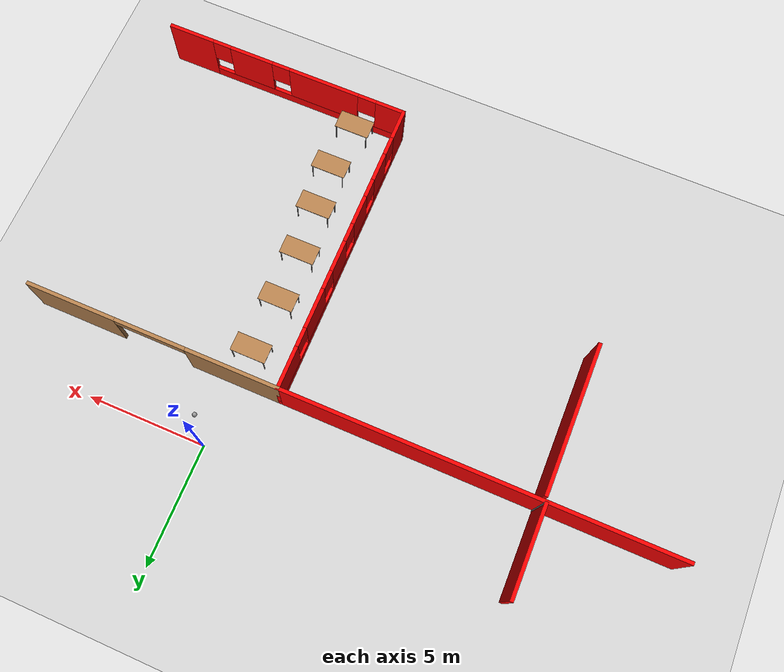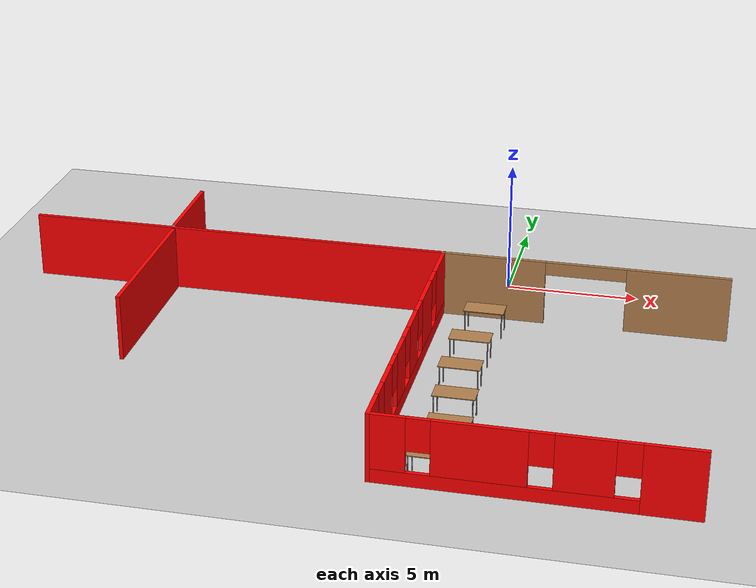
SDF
<sdf version="1.6">
 <world name="default">
  <model name="ground_plane">
   <static>1</static>
   <link name="link">
    <collision name="collision">
     <geometry><plane><normal>0 0 1</normal><size>100 100</size></plane></geometry>
     <surface><friction><ode><mu>100</mu><mu2>50</mu2></ode></friction></surface>
    </collision>
    <visual name="visual">
     <cast_shadows>0</cast_shadows>
     <geometry><plane><normal>0 0 1</normal><size>100 100</size></plane></geometry>
     <material>
      <script><uri>file://media/materials/scripts/gazebo.material</uri><name>Gazebo/Grey</name></script>
     </material>
    </visual>
   </link>
  </model>
  <model name="FloorPlan">
   <pose>0.30947 -3.19534 0 0 -0 0</pose>
   <link name="Wall_106">
    <pose>2.89263 0.399775 0 0 -0 0</pose>
    <visual name="Wall_106_Visual_0">
     <pose>-3.40324 0 1.25 0 -0 0</pose>
     <geometry><box><size>3.94351 0.15 2.5</size></box></geometry>
     <material>
      <script><uri>file://media/materials/scripts/gazebo.material</uri><name>Gazebo/Wood</name></script>
      <ambient>1 1 1 1</ambient>
     </material>
     <meta><layer>0</layer></meta>
    </visual>
    <collision name="Wall_106_Collision_0">
     <geometry><box><size>3.94351 0.15 2.5</size></box></geometry>
     <pose>-3.40324 0 1.25 0 -0 0</pose>
    </collision>
    <visual name="Wall_106_Visual_1">
     <pose>3.47176 0 1.25 0 -0 0</pose>
     <geometry><box><size>3.80649 0.15 2.5</size></box></geometry>
     <material>
      <script><uri>file://media/materials/scripts/gazebo.material</uri><name>Gazebo/Wood</name></script>
      <ambient>1 1 1 1</ambient>
     </material>
     <meta><layer>0</layer></meta>
    </visual>
    <collision name="Wall_106_Collision_1">
     <geometry><box><size>3.80649 0.15 2.5</size></box></geometry>
     <pose>3.47176 0 1.25 0 -0 0</pose>
    </collision>
    <visual name="Wall_106_Visual_2">
     <pose>0.068513 0 2.25 0 -0 0</pose>
     <geometry><box><size>3 0.15 0.5</size></box></geometry>
     <material>
      <script><uri>file://media/materials/scripts/gazebo.material</uri><name>Gazebo/Wood</name></script>
      <ambient>1 1 1 1</ambient>
     </material>
     <meta><layer>0</layer></meta>
    </visual>
    <collision name="Wall_106_Collision_2">
     <geometry><box><size>3 0.15 0.5</size></box></geometry>
     <pose>0.068513 0 2.25 0 -0 0</pose>
    </collision>
   </link>
   <link name="Wall_54">
    <collision name="Wall_54_Collision">
     <geometry><box><size>6.25 0.15 2.5</size></box></geometry>
     <pose>0 0 1.25 0 -0 0</pose>
    </collision>
    <visual name="Wall_54_Visual">
     <pose>0 0 1.25 0 -0 0</pose>
     <geometry><box><size>6.25 0.15 2.5</size></box></geometry>
     <material>
      <script><uri>file://media/materials/scripts/gazebo.material</uri><name>Gazebo/Grey</name></script>
      <ambient>1 0 0 1</ambient>
     </material>
     <meta><layer>0</layer></meta>
    </visual>
    <pose>-12.9859 -2.88407 0 0 -0 1.5708</pose>
   </link>
   <link name="Wall_6">
    <pose>2.89263 -12.2002 0 0 -0 3.14159</pose>
    <visual name="Wall_6_Visual_0">
     <pose>-4.36632 0 1.25 0 -0 0</pose>
     <geometry><box><size>2.01735 0.15 2.5</size></box></geometry>
     <material>
      <script><uri>file://media/materials/scripts/gazebo.material</uri><name>Gazebo/Grey</name></script>
      <ambient>1 0 0 1</ambient>
     </material>
     <meta><layer>0</layer></meta>
    </visual>
    <collision name="Wall_6_Collision_0">
     <geometry><box><size>2.01735 0.15 2.5</size></box></geometry>
     <pose>-4.36632 0 1.25 0 -0 0</pose>
    </collision>
    <visual name="Wall_6_Visual_1">
     <pose>1.00868 0 0.25 0 -0 0</pose>
     <geometry><box><size>8.73265 0.15 0.5</size></box></geometry>
     <material>
      <script><uri>file://media/materials/scripts/gazebo.material</uri><name>Gazebo/Grey</name></script>
      <ambient>1 0 0 1</ambient>
     </material>
     <meta><layer>0</layer></meta>
    </visual>
    <collision name="Wall_6_Collision_1">
     <geometry><box><size>8.73265 0.15 0.5</size></box></geometry>
     <pose>1.00868 0 0.25 0 -0 0</pose>
    </collision>
    <visual name="Wall_6_Visual_2">
     <pose>-1.59333 0 1.5 0 -0 0</pose>
     <geometry><box><size>1.92863 0.15 2</size></box></geometry>
     <material>
      <script><uri>file://media/materials/scripts/gazebo.material</uri><name>Gazebo/Grey</name></script>
      <ambient>1 0 0 1</ambient>
     </material>
     <meta><layer>0</layer></meta>
    </visual>
    <collision name="Wall_6_Collision_2">
     <geometry><box><size>1.92863 0.15 2</size></box></geometry>
     <pose>-1.59333 0 1.5 0 -0 0</pose>
    </collision>
    <visual name="Wall_6_Visual_3">
     <pose>1.72382 0 1.5 0 -0 0</pose>
     <geometry><box><size>3.10568 0.15 2</size></box></geometry>
     <material>
      <script><uri>file://media/materials/scripts/gazebo.material</uri><name>Gazebo/Grey</name></script>
      <ambient>1 0 0 1</ambient>
     </material>
     <meta><layer>0</layer></meta>
    </visual>
    <collision name="Wall_6_Collision_3">
     <geometry><box><size>3.10568 0.15 2</size></box></geometry>
     <pose>1.72382 0 1.5 0 -0 0</pose>
    </collision>
    <visual name="Wall_6_Visual_4">
     <pose>4.72583 0 1.5 0 -0 0</pose>
     <geometry><box><size>1.29834 0.15 2</size></box></geometry>
     <material>
      <script><uri>file://media/materials/scripts/gazebo.material</uri><name>Gazebo/Grey</name></script>
      <ambient>1 0 0 1</ambient>
     </material>
     <meta><layer>0</layer></meta>
    </visual>
    <collision name="Wall_6_Collision_4">
     <geometry><box><size>1.29834 0.15 2</size></box></geometry>
     <pose>4.72583 0 1.5 0 -0 0</pose>
    </collision>
    <visual name="Wall_6_Visual_5">
     <pose>-2.95765 0 1.9 0 -0 0</pose>
     <geometry><box><size>0.8 0.15 1.2</size></box></geometry>
     <material>
      <script><uri>file://media/materials/scripts/gazebo.material</uri><name>Gazebo/Grey</name></script>
      <ambient>1 0 0 1</ambient>
     </material>
     <meta><layer>0</layer></meta>
    </visual>
    <collision name="Wall_6_Collision_5">
     <geometry><box><size>0.8 0.15 1.2</size></box></geometry>
     <pose>-2.95765 0 1.9 0 -0 0</pose>
    </collision>
    <visual name="Wall_6_Visual_6">
     <pose>-0.22902 0 1.9 0 -0 0</pose>
     <geometry><box><size>0.8 0.15 1.2</size></box></geometry>
     <material>
      <script><uri>file://media/materials/scripts/gazebo.material</uri><name>Gazebo/Grey</name></script>
      <ambient>1 0 0 1</ambient>
     </material>
     <meta><layer>0</layer></meta>
    </visual>
    <collision name="Wall_6_Collision_6">
     <geometry><box><size>0.8 0.15 1.2</size></box></geometry>
     <pose>-0.22902 0 1.9 0 -0 0</pose>
    </collision>
    <visual name="Wall_6_Visual_7">
     <pose>3.67666 0 1.9 0 -0 0</pose>
     <geometry><box><size>0.8 0.15 1.2</size></box></geometry>
     <material>
      <script><uri>file://media/materials/scripts/gazebo.material</uri><name>Gazebo/Grey</name></script>
      <ambient>1 0 0 1</ambient>
     </material>
     <meta><layer>0</layer></meta>
    </visual>
    <collision name="Wall_6_Collision_7">
     <geometry><box><size>0.8 0.15 1.2</size></box></geometry>
     <pose>3.67666 0 1.9 0 -0 0</pose>
    </collision>
   </link>
   <link name="Wall_7">
    <pose>-2.40737 -5.90023 0 0 -0 1.5708</pose>
    <visual name="Wall_7_Visual_0">
     <pose>-5.70503 0 1.25 0 -0 0</pose>
     <geometry><box><size>1.33994 0.15 2.5</size></box></geometry>
     <material>
      <script><uri>file://media/materials/scripts/gazebo.material</uri><name>Gazebo/Grey</name></script>
      <ambient>1 0 0 1</ambient>
     </material>
     <meta><layer>0</layer></meta>
    </visual>
    <collision name="Wall_7_Collision_0">
     <geometry><box><size>1.33994 0.15 2.5</size></box></geometry>
     <pose>-5.70503 0 1.25 0 -0 0</pose>
    </collision>
    <visual name="Wall_7_Visual_1">
     <pose>0.66997 0 0.25 0 -0 0</pose>
     <geometry><box><size>11.4101 0.15 0.5</size></box></geometry>
     <material>
      <script><uri>file://media/materials/scripts/gazebo.material</uri><name>Gazebo/Grey</name></script>
      <ambient>1 0 0 1</ambient>
     </material>
     <meta><layer>0</layer></meta>
    </visual>
    <collision name="Wall_7_Collision_1">
     <geometry><box><size>11.4101 0.15 0.5</size></box></geometry>
     <pose>0.66997 0 0.25 0 -0 0</pose>
    </collision>
    <visual name="Wall_7_Visual_2">
     <pose>-3.61851 0 1.5 0 -0 0</pose>
     <geometry><box><size>1.2331 0.15 2</size></box></geometry>
     <material>
      <script><uri>file://media/materials/scripts/gazebo.material</uri><name>Gazebo/Grey</name></script>
      <ambient>1 0 0 1</ambient>
     </material>
     <meta><layer>0</layer></meta>
    </visual>
    <collision name="Wall_7_Collision_2">
     <geometry><box><size>1.2331 0.15 2</size></box></geometry>
     <pose>-3.61851 0 1.5 0 -0 0</pose>
    </collision>
    <visual name="Wall_7_Visual_3">
     <pose>-1.55867 0 1.5 0 -0 0</pose>
     <geometry><box><size>1.2866 0.15 2</size></box></geometry>
     <material>
      <script><uri>file://media/materials/scripts/gazebo.material</uri><name>Gazebo/Grey</name></script>
      <ambient>1 0 0 1</ambient>
     </material>
     <meta><layer>0</layer></meta>
    </visual>
    <collision name="Wall_7_Collision_3">
     <geometry><box><size>1.2866 0.15 2</size></box></geometry>
     <pose>-1.55867 0 1.5 0 -0 0</pose>
    </collision>
    <visual name="Wall_7_Visual_4">
     <pose>0.554682 0 1.5 0 -0 0</pose>
     <geometry><box><size>1.3401 0.15 2</size></box></geometry>
     <material>
      <script><uri>file://media/materials/scripts/gazebo.material</uri><name>Gazebo/Grey</name></script>
      <ambient>1 0 0 1</ambient>
     </material>
     <meta><layer>0</layer></meta>
    </visual>
    <collision name="Wall_7_Collision_4">
     <geometry><box><size>1.3401 0.15 2</size></box></geometry>
     <pose>0.554682 0 1.5 0 -0 0</pose>
    </collision>
    <visual name="Wall_7_Visual_5">
     <pose>2.88204 0 1.5 0 -0 0</pose>
     <geometry><box><size>1.71462 0.15 2</size></box></geometry>
     <material>
      <script><uri>file://media/materials/scripts/gazebo.material</uri><name>Gazebo/Grey</name></script>
      <ambient>1 0 0 1</ambient>
     </material>
     <meta><layer>0</layer></meta>
    </visual>
    <collision name="Wall_7_Collision_5">
     <geometry><box><size>1.71462 0.15 2</size></box></geometry>
     <pose>2.88204 0 1.5 0 -0 0</pose>
    </collision>
    <visual name="Wall_7_Visual_6">
     <pose>5.45718 0 1.5 0 -0 0</pose>
     <geometry><box><size>1.83565 0.15 2</size></box></geometry>
     <material>
      <script><uri>file://media/materials/scripts/gazebo.material</uri><name>Gazebo/Grey</name></script>
      <ambient>1 0 0 1</ambient>
     </material>
     <meta><layer>0</layer></meta>
    </visual>
    <collision name="Wall_7_Collision_6">
     <geometry><box><size>1.83565 0.15 2</size></box></geometry>
     <pose>5.45718 0 1.5 0 -0 0</pose>
    </collision>
    <visual name="Wall_7_Visual_7">
     <pose>-4.63506 0 1.9 0 -0 0</pose>
     <geometry><box><size>0.8 0.15 1.2</size></box></geometry>
     <material>
      <script><uri>file://media/materials/scripts/gazebo.material</uri><name>Gazebo/Grey</name></script>
      <ambient>1 0 0 1</ambient>
     </material>
     <meta><layer>0</layer></meta>
    </visual>
    <collision name="Wall_7_Collision_7">
     <geometry><box><size>0.8 0.15 1.2</size></box></geometry>
     <pose>-4.63506 0 1.9 0 -0 0</pose>
    </collision>
    <visual name="Wall_7_Visual_8">
     <pose>-2.60196 0 1.9 0 -0 0</pose>
     <geometry><box><size>0.8 0.15 1.2</size></box></geometry>
     <material>
      <script><uri>file://media/materials/scripts/gazebo.material</uri><name>Gazebo/Grey</name></script>
      <ambient>1 0 0 1</ambient>
     </material>
     <meta><layer>0</layer></meta>
    </visual>
    <collision name="Wall_7_Collision_8">
     <geometry><box><size>0.8 0.15 1.2</size></box></geometry>
     <pose>-2.60196 0 1.9 0 -0 0</pose>
    </collision>
    <visual name="Wall_7_Visual_9">
     <pose>-0.515368 0 1.9 0 -0 0</pose>
     <geometry><box><size>0.8 0.15 1.2</size></box></geometry>
     <material>
      <script><uri>file://media/materials/scripts/gazebo.material</uri><name>Gazebo/Grey</name></script>
      <ambient>1 0 0 1</ambient>
     </material>
     <meta><layer>0</layer></meta>
    </visual>
    <collision name="Wall_7_Collision_9">
     <geometry><box><size>0.8 0.15 1.2</size></box></geometry>
     <pose>-0.515368 0 1.9 0 -0 0</pose>
    </collision>
    <visual name="Wall_7_Visual_10">
     <pose>1.62473 0 1.9 0 -0 0</pose>
     <geometry><box><size>0.8 0.15 1.2</size></box></geometry>
     <material>
      <script><uri>file://media/materials/scripts/gazebo.material</uri><name>Gazebo/Grey</name></script>
      <ambient>1 0 0 1</ambient>
     </material>
     <meta><layer>0</layer></meta>
    </visual>
    <collision name="Wall_7_Collision_10">
     <geometry><box><size>0.8 0.15 1.2</size></box></geometry>
     <pose>1.62473 0 1.9 0 -0 0</pose>
    </collision>
    <visual name="Wall_7_Visual_11">
     <pose>4.13935 0 1.9 0 -0 0</pose>
     <geometry><box><size>0.8 0.15 1.2</size></box></geometry>
     <material>
      <script><uri>file://media/materials/scripts/gazebo.material</uri><name>Gazebo/Grey</name></script>
      <ambient>1 0 0 1</ambient>
     </material>
     <meta><layer>0</layer></meta>
    </visual>
    <collision name="Wall_7_Collision_11">
     <geometry><box><size>0.8 0.15 1.2</size></box></geometry>
     <pose>4.13935 0 1.9 0 -0 0</pose>
    </collision>
   </link>
   <link name="Wall_8">
    <collision name="Wall_8_Collision">
     <geometry><box><size>16.25 0.15 2.5</size></box></geometry>
     <pose>0 0 1.25 0 -0 0</pose>
    </collision>
    <visual name="Wall_8_Visual">
     <pose>0 0 1.25 0 -0 0</pose>
     <geometry><box><size>16.25 0.15 2.5</size></box></geometry>
     <material>
      <script><uri>file://media/materials/scripts/gazebo.material</uri><name>Gazebo/Grey</name></script>
      <ambient>1 0 0 1</ambient>
     </material>
     <meta><layer>0</layer></meta>
    </visual>
    <pose>-10.4574 0.399775 0 0 -0 3.14159</pose>
   </link>
   <link name="Wall_87">
    <collision name="Wall_87_Collision">
     <geometry><box><size>3.75 0.15 2.5</size></box></geometry>
     <pose>0 0 1.25 0 -0 0</pose>
    </collision>
    <visual name="Wall_87_Visual">
     <pose>0 0 1.25 0 -0 0</pose>
     <geometry><box><size>3.75 0.15 2.5</size></box></geometry>
     <material>
      <script><uri>file://media/materials/scripts/gazebo.material</uri><name>Gazebo/Grey</name></script>
      <ambient>1 0 0 1</ambient>
     </material>
     <meta><layer>0</layer></meta>
    </visual>
    <pose>-13.0724 2.2709 0 0 -0 -1.5708</pose>
   </link>
   <link name="Wall_88">
    <collision name="Wall_88_Collision">
     <geometry><box><size>0.16 0.15 2.5</size></box></geometry>
     <pose>0 0 1.25 0 -0 0</pose>
    </collision>
    <visual name="Wall_88_Visual">
     <pose>0 0 1.25 0 -0 0</pose>
     <geometry><box><size>0.16 0.15 2.5</size></box></geometry>
     <material>
      <script><uri>file://media/materials/scripts/gazebo.material</uri><name>Gazebo/Grey</name></script>
      <ambient>1 1 1 1</ambient>
     </material>
     <meta><layer>0</layer></meta>
    </visual>
    <pose>-13.0674 0.470897 0 0 -0 0</pose>
   </link>
   <static>1</static>
  </model>
  <model name="table">
   <static>1</static>
   <link name="link">
    <collision name="surface">
     <pose>0 0 1 0 -0 0</pose>
     <geometry><box><size>1.5 0.8 0.03</size></box></geometry>
     <surface><friction><ode><mu>0.6</mu><mu2>0.6</mu2></ode></friction></surface>
    </collision>
    <visual name="visual1">
     <pose>0 0 1 0 -0 0</pose>
     <geometry><box><size>1.5 0.8 0.03</size></box></geometry>
     <material>
      <script><uri>file://media/materials/scripts/gazebo.material</uri><name>Gazebo/Wood</name></script>
     </material>
    </visual>
    <collision name="front_left_leg">
     <pose>0.68 0.38 0.5 0 -0 0</pose>
     <geometry><cylinder><radius>0.02</radius><length>1</length></cylinder></geometry>
    </collision>
    <visual name="front_left_leg">
     <pose>0.68 0.38 0.5 0 -0 0</pose>
     <geometry><cylinder><radius>0.02</radius><length>1</length></cylinder></geometry>
     <material>
      <script><uri>file://media/materials/scripts/gazebo.material</uri><name>Gazebo/Grey</name></script>
     </material>
    </visual>
    <collision name="front_right_leg">
     <pose>0.68 -0.38 0.5 0 -0 0</pose>
     <geometry><cylinder><radius>0.02</radius><length>1</length></cylinder></geometry>
    </collision>
    <visual name="front_right_leg">
     <pose>0.68 -0.38 0.5 0 -0 0</pose>
     <geometry><cylinder><radius>0.02</radius><length>1</length></cylinder></geometry>
     <material>
      <script><uri>file://media/materials/scripts/gazebo.material</uri><name>Gazebo/Grey</name></script>
     </material>
    </visual>
    <collision name="back_right_leg">
     <pose>-0.68 -0.38 0.5 0 -0 0</pose>
     <geometry><cylinder><radius>0.02</radius><length>1</length></cylinder></geometry>
    </collision>
    <visual name="back_right_leg">
     <pose>-0.68 -0.38 0.5 0 -0 0</pose>
     <geometry><cylinder><radius>0.02</radius><length>1</length></cylinder></geometry>
     <material>
      <script><uri>file://media/materials/scripts/gazebo.material</uri><name>Gazebo/Grey</name></script>
     </material>
    </visual>
    <collision name="back_left_leg">
     <pose>-0.68 0.38 0.5 0 -0 0</pose>
     <geometry><cylinder><radius>0.02</radius><length>1</length></cylinder></geometry>
    </collision>
    <visual name="back_left_leg">
     <pose>-0.68 0.38 0.5 0 -0 0</pose>
     <geometry><cylinder><radius>0.02</radius><length>1</length></cylinder></geometry>
     <material>
      <script><uri>file://media/materials/scripts/gazebo.material</uri><name>Gazebo/Grey</name></script>
     </material>
    </visual>
   </link>
   <pose>0.027881 -12.7345 0 0 -0 0</pose>
  </model>
  <model name="table_0">
   <static>1</static>
   <link name="link">
    <collision name="surface">
     <pose>0 0 1 0 -0 0</pose>
     <geometry><box><size>1.5 0.8 0.03</size></box></geometry>
     <surface><friction><ode><mu>0.6</mu><mu2>0.6</mu2></ode></friction></surface>
    </collision>
    <visual name="visual1">
     <pose>0 0 1 0 -0 0</pose>
     <geometry><box><size>1.5 0.8 0.03</size></box></geometry>
     <material>
      <script><uri>file://media/materials/scripts/gazebo.material</uri><name>Gazebo/Wood</name></script>
     </material>
    </visual>
    <collision name="front_left_leg">
     <pose>0.68 0.38 0.5 0 -0 0</pose>
     <geometry><cylinder><radius>0.02</radius><length>1</length></cylinder></geometry>
    </collision>
    <visual name="front_left_leg">
     <pose>0.68 0.38 0.5 0 -0 0</pose>
     <geometry><cylinder><radius>0.02</radius><length>1</length></cylinder></geometry>
     <material>
      <script><uri>file://media/materials/scripts/gazebo.material</uri><name>Gazebo/Grey</name></script>
     </material>
    </visual>
    <collision name="front_right_leg">
     <pose>0.68 -0.38 0.5 0 -0 0</pose>
     <geometry><cylinder><radius>0.02</radius><length>1</length></cylinder></geometry>
    </collision>
    <visual name="front_right_leg">
     <pose>0.68 -0.38 0.5 0 -0 0</pose>
     <geometry><cylinder><radius>0.02</radius><length>1</length></cylinder></geometry>
     <material>
      <script><uri>file://media/materials/scripts/gazebo.material</uri><name>Gazebo/Grey</name></script>
     </material>
    </visual>
    <collision name="back_right_leg">
     <pose>-0.68 -0.38 0.5 0 -0 0</pose>
     <geometry><cylinder><radius>0.02</radius><length>1</length></cylinder></geometry>
    </collision>
    <visual name="back_right_leg">
     <pose>-0.68 -0.38 0.5 0 -0 0</pose>
     <geometry><cylinder><radius>0.02</radius><length>1</length></cylinder></geometry>
     <material>
      <script><uri>file://media/materials/scripts/gazebo.material</uri><name>Gazebo/Grey</name></script>
     </material>
    </visual>
    <collision name="back_left_leg">
     <pose>-0.68 0.38 0.5 0 -0 0</pose>
     <geometry><cylinder><radius>0.02</radius><length>1</length></cylinder></geometry>
    </collision>
    <visual name="back_left_leg">
     <pose>-0.68 0.38 0.5 0 -0 0</pose>
     <geometry><cylinder><radius>0.02</radius><length>1</length></cylinder></geometry>
     <material>
      <script><uri>file://media/materials/scripts/gazebo.material</uri><name>Gazebo/Grey</name></script>
     </material>
    </visual>
   </link>
   <pose>-0.128707 -10.7909 0 0 -0 0</pose>
  </model>
  <model name="table_1">
   <static>1</static>
   <link name="link">
    <collision name="surface">
     <pose>0 0 1 0 -0 0</pose>
     <geometry><box><size>1.5 0.8 0.03</size></box></geometry>
     <surface><friction><ode><mu>0.6</mu><mu2>0.6</mu2></ode></friction></surface>
    </collision>
    <visual name="visual1">
     <pose>0 0 1 0 -0 0</pose>
     <geometry><box><size>1.5 0.8 0.03</size></box></geometry>
     <material>
      <script><uri>file://media/materials/scripts/gazebo.material</uri><name>Gazebo/Wood</name></script>
     </material>
    </visual>
    <collision name="front_left_leg">
     <pose>0.68 0.38 0.5 0 -0 0</pose>
     <geometry><cylinder><radius>0.02</radius><length>1</length></cylinder></geometry>
    </collision>
    <visual name="front_left_leg">
     <pose>0.68 0.38 0.5 0 -0 0</pose>
     <geometry><cylinder><radius>0.02</radius><length>1</length></cylinder></geometry>
     <material>
      <script><uri>file://media/materials/scripts/gazebo.material</uri><name>Gazebo/Grey</name></script>
     </material>
    </visual>
    <collision name="front_right_leg">
     <pose>0.68 -0.38 0.5 0 -0 0</pose>
     <geometry><cylinder><radius>0.02</radius><length>1</length></cylinder></geometry>
    </collision>
    <visual name="front_right_leg">
     <pose>0.68 -0.38 0.5 0 -0 0</pose>
     <geometry><cylinder><radius>0.02</radius><length>1</length></cylinder></geometry>
     <material>
      <script><uri>file://media/materials/scripts/gazebo.material</uri><name>Gazebo/Grey</name></script>
     </material>
    </visual>
    <collision name="back_right_leg">
     <pose>-0.68 -0.38 0.5 0 -0 0</pose>
     <geometry><cylinder><radius>0.02</radius><length>1</length></cylinder></geometry>
    </collision>
    <visual name="back_right_leg">
     <pose>-0.68 -0.38 0.5 0 -0 0</pose>
     <geometry><cylinder><radius>0.02</radius><length>1</length></cylinder></geometry>
     <material>
      <script><uri>file://media/materials/scripts/gazebo.material</uri><name>Gazebo/Grey</name></script>
     </material>
    </visual>
    <collision name="back_left_leg">
     <pose>-0.68 0.38 0.5 0 -0 0</pose>
     <geometry><cylinder><radius>0.02</radius><length>1</length></cylinder></geometry>
    </collision>
    <visual name="back_left_leg">
     <pose>-0.68 0.38 0.5 0 -0 0</pose>
     <geometry><cylinder><radius>0.02</radius><length>1</length></cylinder></geometry>
     <material>
      <script><uri>file://media/materials/scripts/gazebo.material</uri><name>Gazebo/Grey</name></script>
     </material>
    </visual>
   </link>
   <pose>-0.331607 -8.68007 0 0 -0 0</pose>
  </model>
  <model name="table_2">
   <static>1</static>
   <link name="link">
    <collision name="surface">
     <pose>0 0 1 0 -0 0</pose>
     <geometry><box><size>1.5 0.8 0.03</size></box></geometry>
     <surface><friction><ode><mu>0.6</mu><mu2>0.6</mu2></ode></friction></surface>
    </collision>
    <visual name="visual1">
     <pose>0 0 1 0 -0 0</pose>
     <geometry><box><size>1.5 0.8 0.03</size></box></geometry>
     <material>
      <script><uri>file://media/materials/scripts/gazebo.material</uri><name>Gazebo/Wood</name></script>
     </material>
    </visual>
    <collision name="front_left_leg">
     <pose>0.68 0.38 0.5 0 -0 0</pose>
     <geometry><cylinder><radius>0.02</radius><length>1</length></cylinder></geometry>
    </collision>
    <visual name="front_left_leg">
     <pose>0.68 0.38 0.5 0 -0 0</pose>
     <geometry><cylinder><radius>0.02</radius><length>1</length></cylinder></geometry>
     <material>
      <script><uri>file://media/materials/scripts/gazebo.material</uri><name>Gazebo/Grey</name></script>
     </material>
    </visual>
    <collision name="front_right_leg">
     <pose>0.68 -0.38 0.5 0 -0 0</pose>
     <geometry><cylinder><radius>0.02</radius><length>1</length></cylinder></geometry>
    </collision>
    <visual name="front_right_leg">
     <pose>0.68 -0.38 0.5 0 -0 0</pose>
     <geometry><cylinder><radius>0.02</radius><length>1</length></cylinder></geometry>
     <material>
      <script><uri>file://media/materials/scripts/gazebo.material</uri><name>Gazebo/Grey</name></script>
     </material>
    </visual>
    <collision name="back_right_leg">
     <pose>-0.68 -0.38 0.5 0 -0 0</pose>
     <geometry><cylinder><radius>0.02</radius><length>1</length></cylinder></geometry>
    </collision>
    <visual name="back_right_leg">
     <pose>-0.68 -0.38 0.5 0 -0 0</pose>
     <geometry><cylinder><radius>0.02</radius><length>1</length></cylinder></geometry>
     <material>
      <script><uri>file://media/materials/scripts/gazebo.material</uri><name>Gazebo/Grey</name></script>
     </material>
    </visual>
    <collision name="back_left_leg">
     <pose>-0.68 0.38 0.5 0 -0 0</pose>
     <geometry><cylinder><radius>0.02</radius><length>1</length></cylinder></geometry>
    </collision>
    <visual name="back_left_leg">
     <pose>-0.68 0.38 0.5 0 -0 0</pose>
     <geometry><cylinder><radius>0.02</radius><length>1</length></cylinder></geometry>
     <material>
      <script><uri>file://media/materials/scripts/gazebo.material</uri><name>Gazebo/Grey</name></script>
     </material>
    </visual>
   </link>
   <pose>-0.361272 -6.50679 0 0 -0 0</pose>
  </model>
  <model name="table_3">
   <static>1</static>
   <link name="link">
    <collision name="surface">
     <pose>0 0 1 0 -0 0</pose>
     <geometry><box><size>1.5 0.8 0.03</size></box></geometry>
     <surface><friction><ode><mu>0.6</mu><mu2>0.6</mu2></ode></friction></surface>
    </collision>
    <visual name="visual1">
     <pose>0 0 1 0 -0 0</pose>
     <geometry><box><size>1.5 0.8 0.03</size></box></geometry>
     <material>
      <script><uri>file://media/materials/scripts/gazebo.material</uri><name>Gazebo/Wood</name></script>
     </material>
    </visual>
    <collision name="front_left_leg">
     <pose>0.68 0.38 0.5 0 -0 0</pose>
     <geometry><cylinder><radius>0.02</radius><length>1</length></cylinder></geometry>
    </collision>
    <visual name="front_left_leg">
     <pose>0.68 0.38 0.5 0 -0 0</pose>
     <geometry><cylinder><radius>0.02</radius><length>1</length></cylinder></geometry>
     <material>
      <script><uri>file://media/materials/scripts/gazebo.material</uri><name>Gazebo/Grey</name></script>
     </material>
    </visual>
    <collision name="front_right_leg">
     <pose>0.68 -0.38 0.5 0 -0 0</pose>
     <geometry><cylinder><radius>0.02</radius><length>1</length></cylinder></geometry>
    </collision>
    <visual name="front_right_leg">
     <pose>0.68 -0.38 0.5 0 -0 0</pose>
     <geometry><cylinder><radius>0.02</radius><length>1</length></cylinder></geometry>
     <material>
      <script><uri>file://media/materials/scripts/gazebo.material</uri><name>Gazebo/Grey</name></script>
     </material>
    </visual>
    <collision name="back_right_leg">
     <pose>-0.68 -0.38 0.5 0 -0 0</pose>
     <geometry><cylinder><radius>0.02</radius><length>1</length></cylinder></geometry>
    </collision>
    <visual name="back_right_leg">
     <pose>-0.68 -0.38 0.5 0 -0 0</pose>
     <geometry><cylinder><radius>0.02</radius><length>1</length></cylinder></geometry>
     <material>
      <script><uri>file://media/materials/scripts/gazebo.material</uri><name>Gazebo/Grey</name></script>
     </material>
    </visual>
    <collision name="back_left_leg">
     <pose>-0.68 0.38 0.5 0 -0 0</pose>
     <geometry><cylinder><radius>0.02</radius><length>1</length></cylinder></geometry>
    </collision>
    <visual name="back_left_leg">
     <pose>-0.68 0.38 0.5 0 -0 0</pose>
     <geometry><cylinder><radius>0.02</radius><length>1</length></cylinder></geometry>
     <material>
      <script><uri>file://media/materials/scripts/gazebo.material</uri><name>Gazebo/Grey</name></script>
     </material>
    </visual>
   </link>
   <pose>-0.244052 -4.15075 0 0 -0 0</pose>
  </model>
  <model name="table_4">
   <static>1</static>
   <link name="link">
    <collision name="surface">
     <pose>0 0 1 0 -0 0</pose>
     <geometry><box><size>1.5 0.8 0.03</size></box></geometry>
     <surface><friction><ode><mu>0.6</mu><mu2>0.6</mu2></ode></friction></surface>
    </collision>
    <visual name="visual1">
     <pose>0 0 1 0 -0 0</pose>
     <geometry><box><size>1.5 0.8 0.03</size></box></geometry>
     <material>
      <script><uri>file://media/materials/scripts/gazebo.material</uri><name>Gazebo/Wood</name></script>
     </material>
    </visual>
    <collision name="front_left_leg">
     <pose>0.68 0.38 0.5 0 -0 0</pose>
     <geometry><cylinder><radius>0.02</radius><length>1</length></cylinder></geometry>
    </collision>
    <visual name="front_left_leg">
     <pose>0.68 0.38 0.5 0 -0 0</pose>
     <geometry><cylinder><radius>0.02</radius><length>1</length></cylinder></geometry>
     <material>
      <script><uri>file://media/materials/scripts/gazebo.material</uri><name>Gazebo/Grey</name></script>
     </material>
    </visual>
    <collision name="front_right_leg">
     <pose>0.68 -0.38 0.5 0 -0 0</pose>
     <geometry><cylinder><radius>0.02</radius><length>1</length></cylinder></geometry>
    </collision>
    <visual name="front_right_leg">
     <pose>0.68 -0.38 0.5 0 -0 0</pose>
     <geometry><cylinder><radius>0.02</radius><length>1</length></cylinder></geometry>
     <material>
      <script><uri>file://media/materials/scripts/gazebo.material</uri><name>Gazebo/Grey</name></script>
     </material>
    </visual>
    <collision name="back_right_leg">
     <pose>-0.68 -0.38 0.5 0 -0 0</pose>
     <geometry><cylinder><radius>0.02</radius><length>1</length></cylinder></geometry>
    </collision>
    <visual name="back_right_leg">
     <pose>-0.68 -0.38 0.5 0 -0 0</pose>
     <geometry><cylinder><radius>0.02</radius><length>1</length></cylinder></geometry>
     <material>
      <script><uri>file://media/materials/scripts/gazebo.material</uri><name>Gazebo/Grey</name></script>
     </material>
    </visual>
    <collision name="back_left_leg">
     <pose>-0.68 0.38 0.5 0 -0 0</pose>
     <geometry><cylinder><radius>0.02</radius><length>1</length></cylinder></geometry>
    </collision>
    <visual name="back_left_leg">
     <pose>-0.68 0.38 0.5 0 -0 0</pose>
     <geometry><cylinder><radius>0.02</radius><length>1</length></cylinder></geometry>
     <material>
      <script><uri>file://media/materials/scripts/gazebo.material</uri><name>Gazebo/Grey</name></script>
     </material>
    </visual>
   </link>
   <pose>-0.158853 -14.8436 0 0 -0 0</pose>
  </model>
  <model name="w_ball">
   <link name="link_0">
    <inertial>
     <mass>1</mass>
     <inertia><ixx>0.1</ixx><ixy>0</ixy><ixz>0</ixz><iyy>0.1</iyy><iyz>0</iyz><izz>0.1</izz></inertia>
    </inertial>
    <visual name="visual">
     <geometry><sphere><radius>0.1</radius></sphere></geometry>
     <material>
      <lighting>1</lighting>
      <script><uri>file://media/materials/scripts/gazebo.material</uri><name>Gazebo/Grey</name></script>
      <shader type="pixel"><normal_map>__default__</normal_map></shader>
      <ambient>1 1 1 1</ambient>
      <diffuse>1 1 1 1</diffuse>
      <specular>1 1 1 1</specular>
      <emissive>1 1 1 1</emissive>
     </material>
    </visual>
    <collision name="collision">
     <geometry><sphere><radius>0.1</radius></sphere></geometry>
     <surface>
      <friction>
       <ode><mu>1</mu><mu2>1</mu2><fdir1>0 0 0</fdir1><slip1>0</slip1><slip2>0</slip2></ode>
       <torsional>
        <coefficient>1</coefficient>
        <patch_radius>0</patch_radius>
        <surface_radius>0</surface_radius>
        <use_patch_radius>1</use_patch_radius>
        <ode><slip>0</slip></ode>
       </torsional>
      </friction>
      <bounce><restitution_coefficient>0</restitution_coefficient><threshold>1e+06</threshold></bounce>
      <contact>
       <collide_without_contact>0</collide_without_contact>
       <collide_without_contact_bitmask>1</collide_without_contact_bitmask>
       <collide_bitmask>1</collide_bitmask>
       <ode>
        <soft_cfm>0</soft_cfm>
        <soft_erp>0.2</soft_erp>
        <kp>1e+13</kp>
        <kd>1</kd>
        <max_vel>0.01</max_vel>
        <min_depth>0</min_depth>
       </ode>
       <bullet>
        <split_impulse>1</split_impulse>
        <split_impulse_penetration_threshold>-0.01</split_impulse_penetration_threshold>
        <soft_cfm>0</soft_cfm>
        <soft_erp>0.2</soft_erp>
        <kp>1e+13</kp>
        <kd>1</kd>
       </bullet>
      </contact>
     </surface>
    </collision>
   </link>
   <static>0</static>
   <pose>0.8456 -0.973144 0.1 0 -0 0</pose>
  </model>
 </world>
</sdf>
